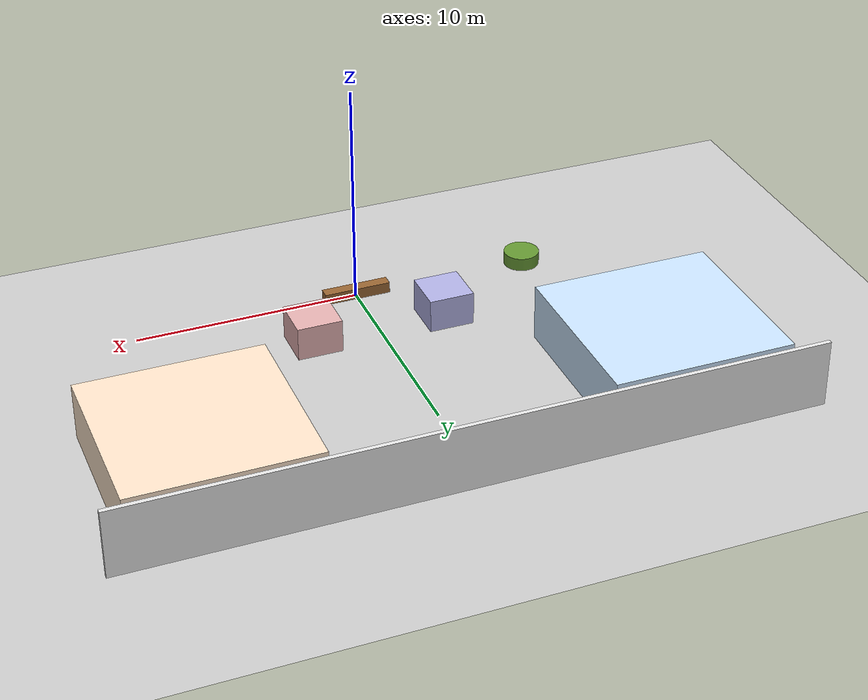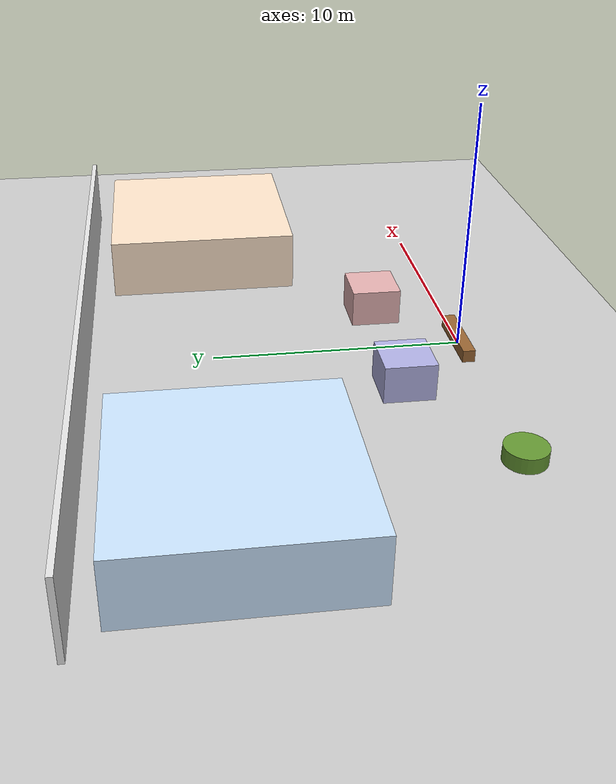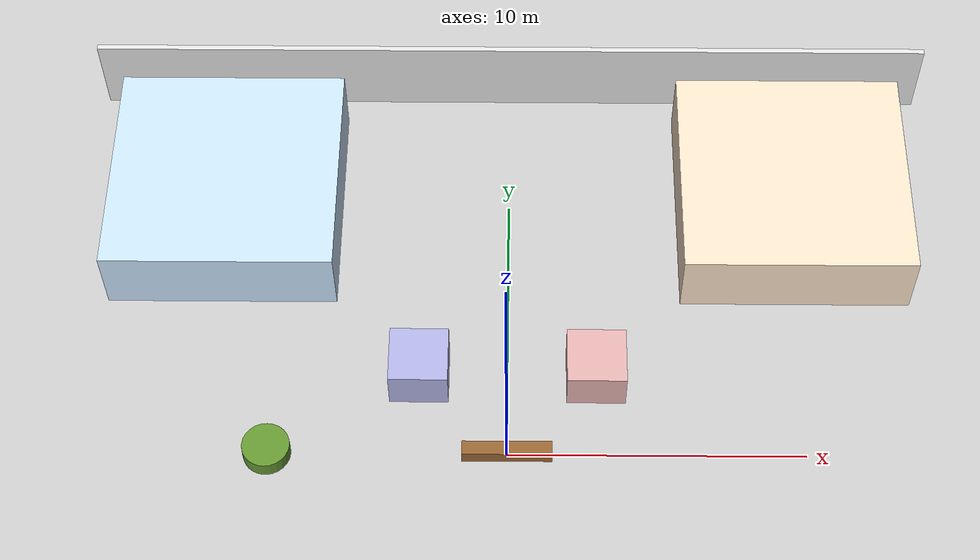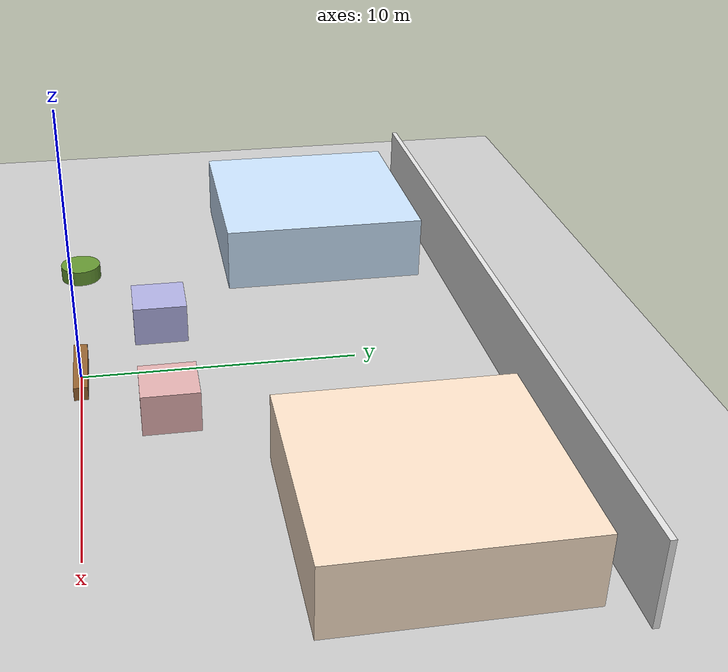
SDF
<?xml version="1.0" ?>
<sdf version="1.6">
  <world name="shopping_mall">
    <include>
      <uri>model://sun</uri>
    </include>
    <include>
      <uri>model://ground_plane</uri>
    </include>

    <!-- Mall corridors -->
    <model name="corridor_wall1">
      <static>true</static>
      <pose>0 15 1.5 0 0 0</pose>
      <link name="link">
        <collision name="collision">
          <geometry>
            <box>
              <size>30 0.2 3</size>
            </box>
          </geometry>
        </collision>
        <visual name="visual">
          <geometry>
            <box>
              <size>30 0.2 3</size>
            </box>
          </geometry>
          <material>
            <ambient>0.9 0.9 0.9 1</ambient>
          </material>
        </visual>
      </link>
    </model>

    <!-- Shops -->
    <model name="shop1">
      <static>true</static>
      <pose>-10 10 1.25 0 0 0</pose>
      <link name="link">
        <collision name="collision">
          <geometry>
            <box>
              <size>8 8 2.5</size>
            </box>
          </geometry>
        </collision>
        <visual name="visual">
          <geometry>
            <box>
              <size>8 8 2.5</size>
            </box>
          </geometry>
          <material>
            <ambient>0.8 0.9 1 1</ambient>
          </material>
        </visual>
      </link>
    </model>

    <model name="shop2">
      <static>true</static>
      <pose>10 10 1.25 0 0 0</pose>
      <link name="link">
        <collision name="collision">
          <geometry>
            <box>
              <size>8 8 2.5</size>
            </box>
          </geometry>
        </collision>
        <visual name="visual">
          <geometry>
            <box>
              <size>8 8 2.5</size>
            </box>
          </geometry>
          <material>
            <ambient>1 0.9 0.8 1</ambient>
          </material>
        </visual>
      </link>
    </model>

    <!-- Shopping kiosks -->
    <model name="kiosk1">
      <static>true</static>
      <pose>-3 3 0.75 0 0 0</pose>
      <link name="link">
        <collision name="collision">
          <geometry>
            <box>
              <size>2 2 1.5</size>
            </box>
          </geometry>
        </collision>
        <visual name="visual">
          <geometry>
            <box>
              <size>2 2 1.5</size>
            </box>
          </geometry>
          <material>
            <ambient>0.7 0.7 0.9 1</ambient>
          </material>
        </visual>
      </link>
    </model>

    <model name="kiosk2">
      <static>true</static>
      <pose>3 3 0.75 0 0 0</pose>
      <link name="link">
        <collision name="collision">
          <geometry>
            <box>
              <size>2 2 1.5</size>
            </box>
          </geometry>
        </collision>
        <visual name="visual">
          <geometry>
            <box>
              <size>2 2 1.5</size>
            </box>
          </geometry>
          <material>
            <ambient>0.9 0.7 0.7 1</ambient>
          </material>
        </visual>
      </link>
    </model>

    <!-- Seating area -->
    <model name="bench1">
      <static>true</static>
      <pose>0 0 0.25 0 0 0</pose>
      <link name="link">
        <collision name="collision">
          <geometry>
            <box>
              <size>3 0.5 0.5</size>
            </box>
          </geometry>
        </collision>
        <visual name="visual">
          <geometry>
            <box>
              <size>3 0.5 0.5</size>
            </box>
          </geometry>
          <material>
            <ambient>0.6 0.4 0.2 1</ambient>
          </material>
        </visual>
      </link>
    </model>

    <!-- Planters -->
    <model name="planter1">
      <static>true</static>
      <pose>-8 0 0.3 0 0 0</pose>
      <link name="link">
        <collision name="collision">
          <geometry>
            <cylinder>
              <radius>0.8</radius>
              <length>0.6</length>
            </cylinder>
          </geometry>
        </collision>
        <visual name="visual">
          <geometry>
            <cylinder>
              <radius>0.8</radius>
              <length>0.6</length>
            </cylinder>
          </geometry>
          <material>
            <ambient>0.4 0.6 0.2 1</ambient>
          </material>
        </visual>
      </link>
    </model>

  </world>
</sdf>
